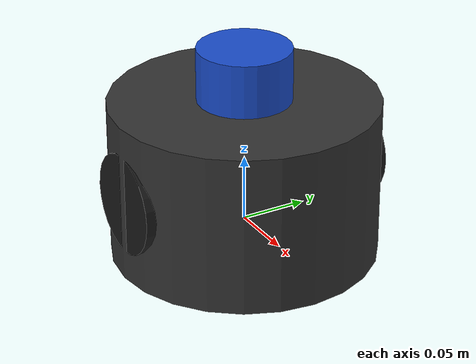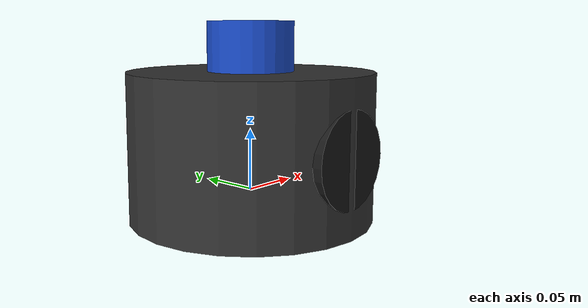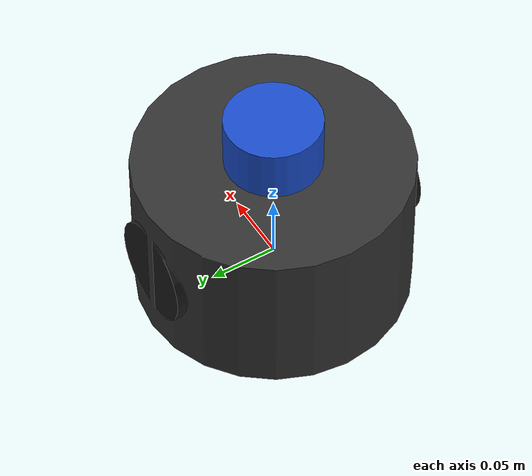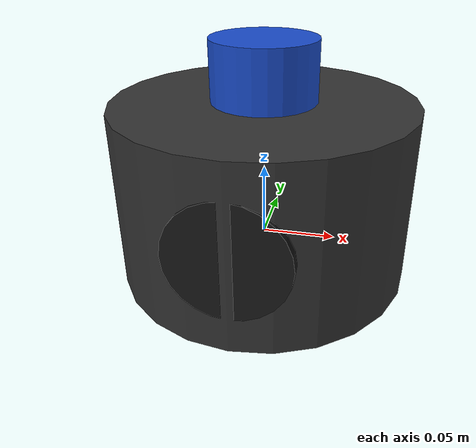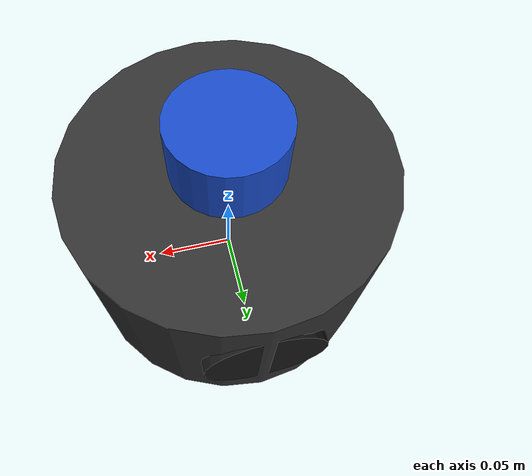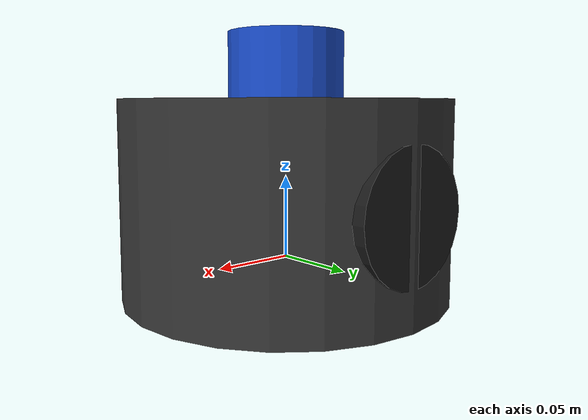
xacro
<?xml version="1.0"?>
<robot name="loki" xmlns:xacro="http://www.ros.org/wiki/xacro">

  <xacro:property name="wheel_radius"   value="0.0375"/>
  <xacro:property name="wheel_width"    value="0.027"/>
  <xacro:property name="wheel_base"     value="0.172"/>
  <xacro:property name="robot_height"   value="0.12"/>

  <!-- Inertia macros: solid cylinder I = m/12*(3r²+h²) for xx/yy, m/2*r² for zz -->
  <xacro:macro name="cylinder_inertia" params="m r h">
    <inertial>
      <mass value="${m}"/>
      <inertia ixx="${m/12*(3*r*r+h*h)}" ixy="0" ixz="0"
               iyy="${m/12*(3*r*r+h*h)}" iyz="0"
               izz="${m/2*r*r}"/>
    </inertial>
  </xacro:macro>

  <xacro:macro name="sphere_inertia" params="m r">
    <inertial>
      <mass value="${m}"/>
      <inertia ixx="${2/5*m*r*r}" ixy="0" ixz="0"
               iyy="${2/5*m*r*r}" iyz="0"
               izz="${2/5*m*r*r}"/>
    </inertial>
  </xacro:macro>

  <link name="base_footprint"/>
  <link name="base_link">
    <visual>
      <geometry><cylinder radius="0.1" length="${robot_height}"/></geometry>
      <material name="dark_grey"><color rgba="0.2 0.2 0.2 1"/></material>
    </visual>
    <collision>
      <geometry><cylinder radius="0.1" length="${robot_height}"/></geometry>
    </collision>
    <!-- Total robot ~1.42 kg minus two wheels (2×0.05 kg) -->
    <xacro:cylinder_inertia m="1.32" r="0.1" h="${robot_height}"/>
  </link>

  <joint name="base_joint" type="fixed">
    <parent link="base_footprint"/>
    <child  link="base_link"/>
    <origin xyz="0 0 ${wheel_radius}"/>
  </joint>

  <link name="wheel_left_link">
    <visual>
      <geometry><cylinder radius="${wheel_radius}" length="${wheel_width}"/></geometry>
      <material name="black"><color rgba="0.1 0.1 0.1 1"/></material>
    </visual>
    <collision>
      <geometry><cylinder radius="${wheel_radius}" length="${wheel_width}"/></geometry>
    </collision>
    <xacro:cylinder_inertia m="0.05" r="${wheel_radius}" h="${wheel_width}"/>
  </link>
  <joint name="wheel_left_joint" type="continuous">
    <parent link="base_link"/>
    <child  link="wheel_left_link"/>
    <origin xyz="0 ${wheel_base/2} 0" rpy="-1.5707 0 0"/>
    <axis xyz="0 0 1"/>
    <dynamics damping="0.01" friction="0.1"/>
  </joint>

  <link name="wheel_right_link">
    <visual>
      <geometry><cylinder radius="${wheel_radius}" length="${wheel_width}"/></geometry>
      <material name="black"><color rgba="0.1 0.1 0.1 1"/></material>
    </visual>
    <collision>
      <geometry><cylinder radius="${wheel_radius}" length="${wheel_width}"/></geometry>
    </collision>
    <xacro:cylinder_inertia m="0.05" r="${wheel_radius}" h="${wheel_width}"/>
  </link>
  <joint name="wheel_right_joint" type="continuous">
    <parent link="base_link"/>
    <child  link="wheel_right_link"/>
    <origin xyz="0 -${wheel_base/2} 0" rpy="-1.5707 0 0"/>
    <axis xyz="0 0 1"/>
    <dynamics damping="0.01" friction="0.1"/>
  </joint>

  <!-- Front caster (passive ball) -->
  <xacro:property name="caster_r" value="0.015"/>
  <link name="caster_link">
    <visual>
      <geometry><sphere radius="${caster_r}"/></geometry>
      <material name="grey"><color rgba="0.5 0.5 0.5 1"/></material>
    </visual>
    <collision>
      <geometry><sphere radius="${caster_r}"/></geometry>
    </collision>
    <xacro:sphere_inertia m="0.01" r="${caster_r}"/>
  </link>
  <joint name="caster_joint" type="fixed">
    <parent link="base_link"/>
    <child  link="caster_link"/>
    <!-- front-centre of body, touching ground -->
    <origin xyz="0.08 0 ${-wheel_radius + caster_r}"/>
  </joint>

  <link name="laser">
    <visual>
      <geometry><cylinder radius="0.035" length="0.04"/></geometry>
      <material name="blue"><color rgba="0.1 0.3 0.8 1"/></material>
    </visual>
  </link>
  <joint name="laser_joint" type="fixed">
    <parent link="base_link"/>
    <child  link="laser"/>
    <origin xyz="0 0 ${robot_height/2 + 0.02}"/>
  </joint>

  <link name="imu_link"/>
  <joint name="imu_joint" type="fixed">
    <parent link="base_link"/>
    <child  link="imu_link"/>
    <origin xyz="0 0 0"/>
  </joint>

</robot>
